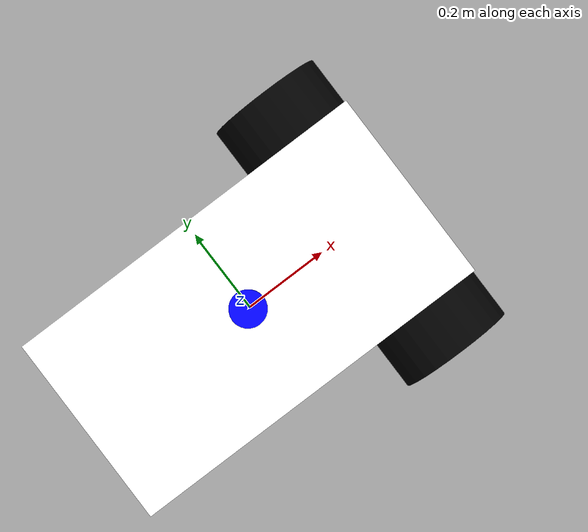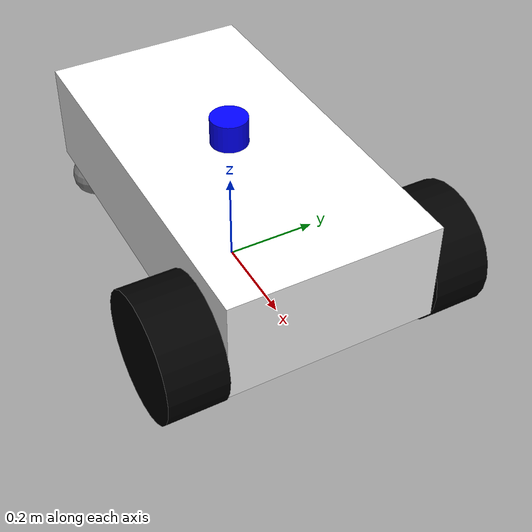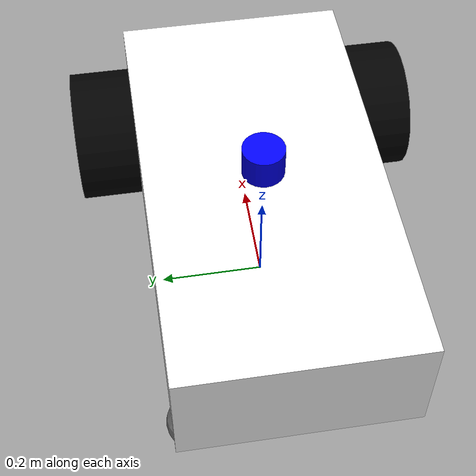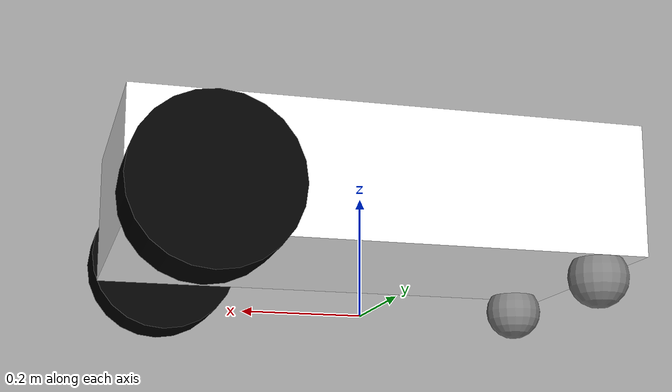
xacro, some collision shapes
<?xml version="1.0"?>
<robot name="differential_robot" xmlns:xacro="http://www.ros.org/wiki/xacro">

  <xacro:property name="length_wheel" value="0.12" />
  <xacro:property name="radius_wheel" value="0.13" />

  <xacro:property name="chassis_length" value="0.84" />
  <xacro:property name="chassis_width" value="0.44" />
  <xacro:property name="chassis_height" value="0.22" />

  <xacro:property name="support_height" value="0.10" />
  <xacro:property name="support_radius" value="0.025" />
  <xacro:property name="wheel_offset_x" value="0.30" />
  <xacro:property name="wheel_offset_y" value="${chassis_width/2 + length_wheel/2}" />
  <xacro:property name="wheel_offset_z" value="-0.06" />
  <xacro:property name="caster_radius" value="0.05" />
  <xacro:property name="caster_offset_x" value="0.35" />
  <xacro:property name="caster_offset_y" value="0.18" />
  <xacro:property name="caster_offset_z" value="${wheel_offset_z - radius_wheel + caster_radius}" />
  <xacro:property name="PI" value="3.1415926"/>

  <xacro:macro name="default_inertial" params="mass">
    <inertial>
      <mass value="${mass}" />
      <inertia ixx="0.1" ixy="0.0" ixz="0.0" iyy="0.1" iyz="0.0" izz="0.1" />
    </inertial>
  </xacro:macro>

  <material name="white">
    <color rgba="1 1 1 1"/>
  </material>
  <material name="black">
    <color rgba="0 0 0 1"/>
  </material>
  <material name="gray">
    <color rgba="0.5 0.5 0.5 1"/>
  </material>
  <material name="dark_gray">
    <color rgba="0.2 0.2 0.2 1"/>
  </material>
  <material name="blue">
    <color rgba="0 0 1.0 1" />
  </material>

  <xacro:arg name="xyz" default="0.0 0.0 0.14" />
  <xacro:arg name="rpy" default="0 0 0" />

  <link name="base_footprint"/>

  <joint name="base_footprint_joint" type="fixed">
    <parent link="base_footprint"/>
    <child link="base_link"/>
    <origin xyz="0 0 0.19" rpy="0 0 0"/>
  </joint>

  <link name="base_link">
    <visual>
      <geometry>
        <box size="${chassis_length} ${chassis_width} ${chassis_height}"/>
      </geometry>
      <origin rpy="0 0 0" xyz="0 0 0"/>
      <material name="white"/>
    </visual>
    <collision>
      <geometry>
        <box size="${chassis_length} ${chassis_width} ${chassis_height}"/>
      </geometry>
      <origin rpy="0 0 0" xyz="0 0 0"/>
    </collision>
    <xacro:default_inertial mass="20.0"/>
  </link>

  <link name="left_front_wheel">
    <visual>
      <geometry>
        <cylinder length="${length_wheel}" radius="${radius_wheel}"/>
      </geometry>
      <origin rpy="0 0 0" xyz="0 0 0"/>
      <material name="black"/>
    </visual>
    <collision>
      <geometry>
        <cylinder length="${length_wheel}" radius="${radius_wheel}"/>
      </geometry>
    </collision>
    <mu1>0.8</mu1>
    <mu2>0.8</mu2>
    <xacro:default_inertial mass="2.0"/>
  </link>

  <joint name="left_front_wheel_joint" type="fixed">
    <parent link="base_link"/>
    <child link="left_front_wheel"/>
    <origin rpy="${-PI/2} 0 0" xyz="${wheel_offset_x} ${wheel_offset_y} ${wheel_offset_z}"/>
    <axis xyz="0 0 1" />
  </joint>

  <link name="right_front_wheel">
    <visual>
      <geometry>
        <cylinder length="${length_wheel}" radius="${radius_wheel}"/>
      </geometry>
      <origin rpy="0 0 0" xyz="0 0 0"/>
      <material name="black"/>
    </visual>
    <collision>
      <geometry>
        <cylinder length="${length_wheel}" radius="${radius_wheel}"/>
      </geometry>
    </collision>
    <mu1>0.8</mu1>
    <mu2>0.8</mu2>
    <xacro:default_inertial mass="2.0"/>
  </link>

  <joint name="right_front_wheel_joint" type="fixed">
    <parent link="base_link"/>
    <child link="right_front_wheel"/>
    <origin rpy="${-PI/2} 0 0" xyz="${wheel_offset_x} -${wheel_offset_y} ${wheel_offset_z}"/>
    <axis xyz="0 0 1" />
  </joint>

  <link name="left_rear_caster">
    <visual>
      <geometry>
        <sphere radius="${caster_radius}"/>
      </geometry>
      <origin rpy="0 0 0" xyz="0 0 0"/>
      <material name="gray"/>
    </visual>
    <collision>
      <geometry>
        <sphere radius="${caster_radius}"/>
      </geometry>
    </collision>
    <mu1>0.01</mu1>
    <mu2>0.01</mu2>
    <xacro:default_inertial mass="0.5"/>
  </link>

  <joint name="left_rear_caster_joint" type="fixed">
    <parent link="base_link"/>
    <child link="left_rear_caster"/>
    <origin rpy="0 0 0" xyz="-${caster_offset_x} ${caster_offset_y} ${caster_offset_z}"/>
  </joint>

  <link name="right_rear_caster">
    <visual>
      <geometry>
        <sphere radius="${caster_radius}"/>
      </geometry>
      <origin rpy="0 0 0" xyz="0 0 0"/>
      <material name="gray"/>
    </visual>
    <collision>
      <geometry>
        <sphere radius="${caster_radius}"/>
      </geometry>
    </collision>
    <mu1>0.01</mu1>
    <mu2>0.01</mu2>
    <xacro:default_inertial mass="0.5"/>
  </link>

  <joint name="right_rear_caster_joint" type="fixed">
    <parent link="base_link"/>
    <child link="right_rear_caster"/>
    <origin rpy="0 0 0" xyz="-${caster_offset_x} -${caster_offset_y} ${caster_offset_z}"/>
  </joint>

  <link name="livox_frame">
    <visual>
      <origin xyz="0.025 -0.0265 -0.025" rpy="${pi/2} 0 ${pi}"/>
      <geometry>
        <mesh filename="package://pb_rm_simulation/meshes/mid360.stl" scale="0.001 0.001 0.001"/>
      </geometry>
      <material name="blue"/>
    </visual>
    <collision>
       <origin xyz="0 0 0" rpy="0 0 0"/>
       <geometry>
          <cylinder length="0.06" radius="0.04"/>
       </geometry>
    </collision>
    <xacro:default_inertial mass="0.5"/>
  </link>

  <joint name="livox_joint" type="fixed">
    <origin xyz="$(arg xyz)" rpy="$(arg rpy)" />
    <parent link="base_link"/>
    <child link="livox_frame"/>
  </joint>

  <link name="camera_link"/>
  <joint name="camera_joint" type="fixed">
    <parent link="base_link"/>
    <child link="camera_link"/>
    <origin xyz="0 0 0" rpy="0 0 0"/>
  </joint>

  <link name="camera_front_link"/>
  <joint name="camera_front_joint" type="fixed">
    <parent link="camera_link"/>
    <child link="camera_front_link"/>
    <origin xyz="0.42 0.0 0.07" rpy="0 0.1745 0"/>
  </joint>

  <link name="camera_front_color_optical_frame"/>
  <joint name="camera_front_optical_joint" type="fixed">
    <parent link="camera_front_link"/>
    <child link="camera_front_color_optical_frame"/>
    <origin xyz="0 0 0" rpy="-1.5707963 0 -1.5707963"/>
  </joint>

  <link name="camera_rear_link"/>
  <joint name="camera_rear_joint" type="fixed">
    <parent link="camera_link"/>
    <child link="camera_rear_link"/>
    <origin xyz="-0.42 0.0 0.07" rpy="0 0.1745 3.14159"/>
  </joint>

  <link name="camera_rear_color_optical_frame"/>
  <joint name="camera_rear_optical_joint" type="fixed">
    <parent link="camera_rear_link"/>
    <child link="camera_rear_color_optical_frame"/>
    <origin xyz="0 0 0" rpy="-1.5707963 0 -1.5707963"/>
  </joint>

</robot>
